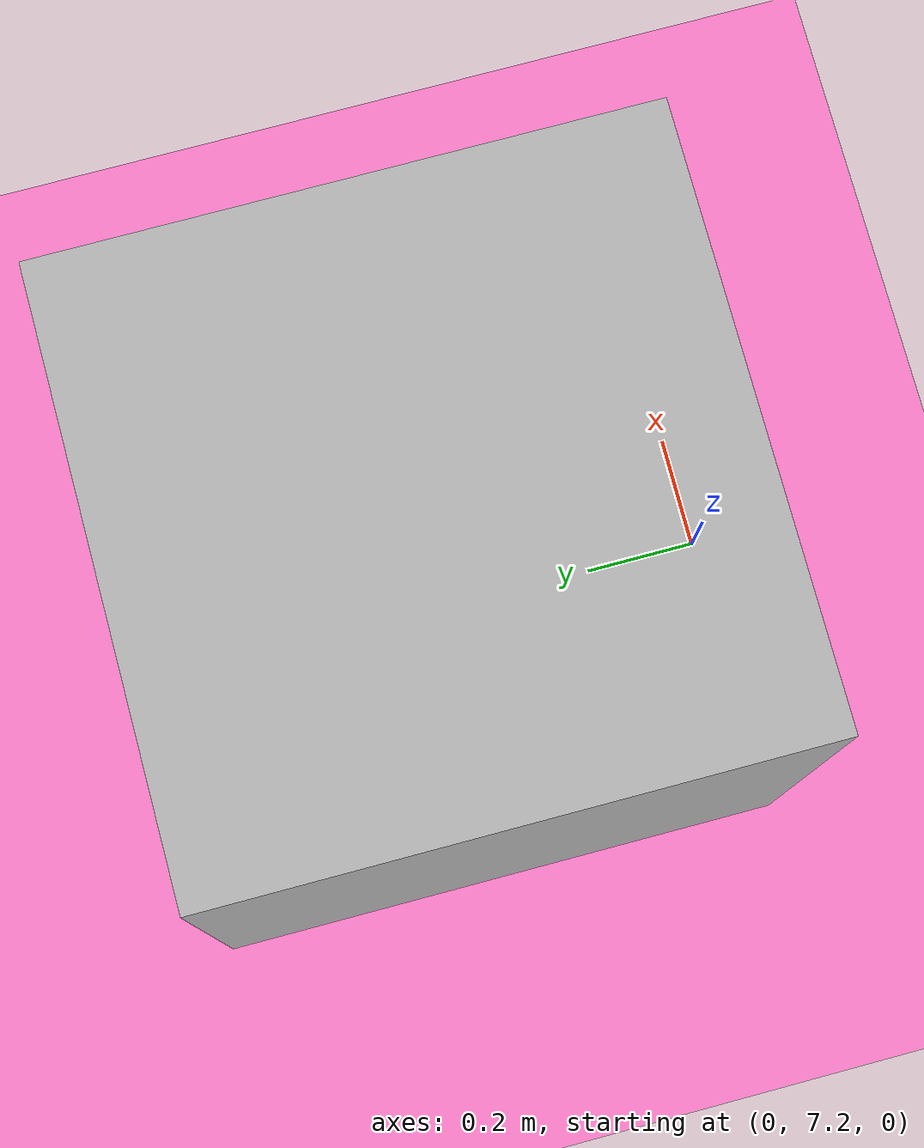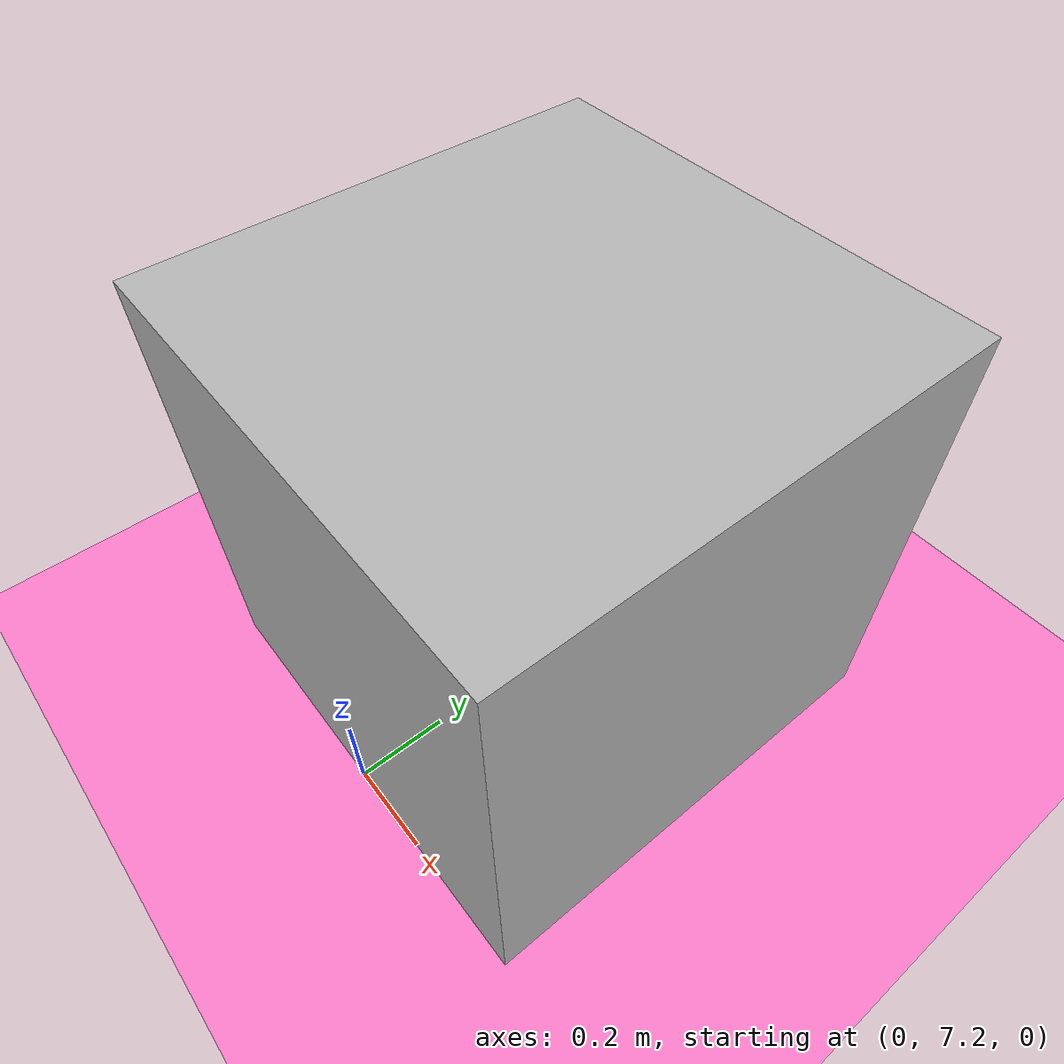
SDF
<?xml version="1.0" ?>
<sdf version="1.8">
    <world name="Moving_robot">

        <!-- Добавлен синий цвет окружения через ambient и background -->
        <scene>
            <ambient>0.1 0.1 0.5 1</ambient>
            <background>0.2 0.2 0.8 1</background>
            <shadows>true</shadows>
        </scene>

        <physics name="1ms" type="ignored">
            <max_step_size>0.02</max_step_size>
            <real_time_factor>1.0</real_time_factor>
        </physics>

        <plugin filename="gz-sim-physics-system" name="gz::sim::systems::Physics"/>
        <plugin filename="gz-sim-user-commands-system" name="gz::sim::systems::UserCommands"/>
        <plugin filename="gz-sim-scene-broadcaster-system" name="gz::sim::systems::SceneBroadcaster"/>
        <plugin filename="gz-sim-sensors-system" name="gz::sim::systems::Sensors"><render_engine>ogre2</render_engine></plugin>
        <plugin filename="gz-sim-contact-system" name="gz::sim::systems::Contact"></plugin>
        <plugin filename="gz-sim-imu-system" name="gz::sim::systems::Imu"></plugin>
        <plugin filename="gz-sim-navsat-system" name="gz::sim::systems::NavSat"></plugin>

        <light type="directional" name="sun">
            <cast_shadows>true</cast_shadows>
            <pose>0 0 10 0 0 0</pose>
            <diffuse>0.8 0.8 0.8 1</diffuse>
            <specular>0.2 0.2 0.2 1</specular>
            <attenuation>
                <range>1000</range>
                <constant>0.9</constant>
                <linear>0.01</linear>
                <quadratic>0.001</quadratic>
            </attenuation>
            <direction>-0.5 0.1 -0.9</direction>
        </light>

        <!-- Плоскость изменена на розовый цвет -->
        <model name="ground_plane">
            <static>true</static>
            <link name="link">
                <collision name="collision">
                    <geometry>
                        <plane>
                            <normal>0 0 1</normal>
                        </plane>
                    </geometry>
                </collision>
                <visual name="visual">
                    <geometry>
                        <plane>
                            <normal>0 0 1</normal>
                            <size>100 100</size>
                        </plane>
                    </geometry>
                    <material>
                        <ambient>1 0.5 0.8 1</ambient>  <!-- Розовый -->
                        <diffuse>1 0.5 0.8 1</diffuse>    <!-- Розовый -->
                        <specular>0.1 0.1 0.1 1</specular>
                    </material>
                </visual>
            </link>
        </model>

        <model name='charger'>
            <static>true</static>
            <link name='charger_link'>
                <collision name='charger_collision'>
                    <geometry>
                        <box>
                            <size>1 1 1</size>
                        </box>
                    </geometry>
                </collision>
                <visual name='charger_visual'>
                    <geometry>
                        <box>
                            <size>1 1 1</size>
                        </box>
                    </geometry>
                    <material>
                        <script>
                            <uri>model://aruco_markers/materials/aruco_marker_42.material</uri>
                            <uri>model://aruco_markers/textures/aruco_marker_42.png</uri>
                            <name>aruco_marker_42</name>
                        </script>

                    </material>
                </visual>
            </link>
            <pose>0 7.7 0.5 0 0 0</pose>
        </model>
   </world>
</sdf>
